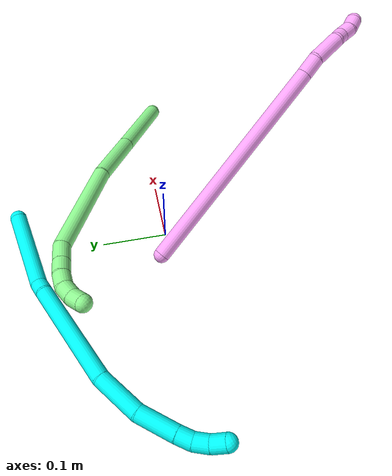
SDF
<sdf version="1.7">
 <world name="default">
  <model name="photoneo_s_sensor">
   <static>1</static>
   <pose>0 0 2 1.57079 1.57079 3.14159</pose>
   <link name="link">
    <inertial><mass>0.1</mass></inertial>
    <sensor name="sensor" type="depth">
     <update_rate>30</update_rate>
     <camera>
      <horizontal_fov>1.22</horizontal_fov>
      <image><width>1920</width><height>1200</height><format>B8G8R8</format></image>
      <clip><near>0.1</near><far>4</far></clip>
      <depth_camera><output>points</output></depth_camera>
     </camera>
     <plugin name="camera_plugin" filename="libgazebo_ros_depth_camera.so">
      <baseline>0.2</baseline>
      <alwaysOn>1</alwaysOn>
      <updateRate>0.0</updateRate>
      <cameraName>camera_ir</cameraName>
      <imageTopicName>/camera/color/image_raw</imageTopicName>
      <cameraInfoTopicName>/camera/color/camera_info</cameraInfoTopicName>
      <depthImageTopicName>/camera/depth/image_raw</depthImageTopicName>
      <depthImageCameraInfoTopicName>/camera/depth/camera_info</depthImageCameraInfoTopicName>
      <pointCloudTopicName>/camera/depth/points</pointCloudTopicName>
      <frameName>fr_optical</frameName>
      <pointCloudCutoff>0.1</pointCloudCutoff>
      <pointCloudCutoffMax>2.0</pointCloudCutoffMax>
      <distortionK1>0</distortionK1>
      <distortionK2>0</distortionK2>
      <distortionK3>0</distortionK3>
      <distortionT1>0</distortionT1>
      <distortionT2>0</distortionT2>
      <CxPrime>0</CxPrime>
      <Cx>0</Cx>
      <Cy>0</Cy>
      <focalLength>0</focalLength>
      <hackBaseline>0</hackBaseline>
     </plugin>
    </sensor>
   </link>
  </model>
  <model name="bin">
   <static>1</static>
   <link name="bottom">
    <collision name="collision-bottom">
     <pose>0 0 -0.01 0 -0 0</pose>
     <geometry><box><size>0.8 0.6 0.02</size></box></geometry>
     <surface>
      <friction><ode><mu>100</mu><mu2>100</mu2></ode></friction>
      <contact><collide_bitmask>65535</collide_bitmask></contact>
     </surface>
    </collision>
   </link>
   <link name="west_wall">
    <collision name="collision-west_wall">
     <pose>-0.41 0 0.1 0 -0 0</pose>
     <geometry><box><size>0.02 0.6 0.2</size></box></geometry>
     <surface>
      <friction><ode><mu>100</mu><mu2>100</mu2></ode></friction>
      <contact><collide_bitmask>65535</collide_bitmask></contact>
     </surface>
    </collision>
   </link>
   <link name="east_wall">
    <collision name="collision-east_wall">
     <pose>0.41 0 0.1 0 -0 0</pose>
     <geometry><box><size>0.02 0.6 0.2</size></box></geometry>
     <surface>
      <friction><ode><mu>100</mu><mu2>100</mu2></ode></friction>
      <contact><collide_bitmask>65535</collide_bitmask></contact>
     </surface>
    </collision>
   </link>
   <link name="south_wall">
    <collision name="collision-south_wall">
     <pose>0 -0.31 0.1 0 -0 0</pose>
     <geometry><box><size>0.8 0.02 0.2</size></box></geometry>
     <surface>
      <friction><ode><mu>100</mu><mu2>100</mu2></ode></friction>
      <contact><collide_bitmask>65535</collide_bitmask></contact>
     </surface>
    </collision>
   </link>
   <link name="north_wall">
    <collision name="collision-north_wall">
     <pose>0 0.31 0.1 0 -0 0</pose>
     <geometry><box><size>0.8 0.02 0.2</size></box></geometry>
     <surface>
      <friction><ode><mu>100</mu><mu2>100</mu2></ode></friction>
      <contact><collide_bitmask>65535</collide_bitmask></contact>
     </surface>
    </collision>
   </link>
  </model>
  <model name="3">
   <static>0</static>
   <link name="3">
    <collision name="collision-cylinder-e_1_1_4">
     <pose>-0.061561 -0.001895 -0.003908 2.69007 -1.50036 -2.65832</pose>
     <geometry><cylinder><radius>0.0125</radius><length>0.123428</length></cylinder></geometry>
     <surface>
      <friction><ode><mu>1.16</mu><mu2>1.16</mu2><slip1>0</slip1><slip2>0</slip2></ode></friction>
      <contact><ode><kp>1e+06</kp><kd>1</kd><max_vel>0</max_vel><min_depth>0.001</min_depth></ode></contact>
     </surface>
    </collision>
    <visual name="visual-cylinder-e_1_1_4">
     <pose>-0.061561 -0.001895 -0.003908 2.69007 -1.50036 -2.65832</pose>
     <geometry><cylinder><radius>0.0125</radius><length>0.123428</length></cylinder></geometry>
     <material><ambient>0.003922 1 0.996078 1</ambient></material>
    </visual>
    <collision name="collision-cylinder-e_2_4_5">
     <pose>-0.132891 -0.001556 -0.005305 -0.72733 -1.23947 0.530321</pose>
     <geometry><cylinder><radius>0.0125</radius><length>0.020663</length></cylinder></geometry>
     <surface>
      <friction><ode><mu>1.16</mu><mu2>1.16</mu2><slip1>0</slip1><slip2>0</slip2></ode></friction>
      <contact><ode><kp>1e+06</kp><kd>1</kd><max_vel>0</max_vel><min_depth>0.001</min_depth></ode></contact>
     </surface>
    </collision>
    <visual name="visual-cylinder-e_2_4_5">
     <pose>-0.132891 -0.001556 -0.005305 -0.72733 -1.23947 0.530321</pose>
     <geometry><cylinder><radius>0.0125</radius><length>0.020663</length></cylinder></geometry>
     <material><ambient>0.003922 1 0.996078 1</ambient></material>
    </visual>
    <collision name="collision-cylinder-e_3_5_6">
     <pose>-0.222796 0.000569 0.013103 0.006918 -1.37494 -0.005681</pose>
     <geometry><cylinder><radius>0.0125</radius><length>0.163395</length></cylinder></geometry>
     <surface>
      <friction><ode><mu>1.16</mu><mu2>1.16</mu2><slip1>0</slip1><slip2>0</slip2></ode></friction>
      <contact><ode><kp>1e+06</kp><kd>1</kd><max_vel>0</max_vel><min_depth>0.001</min_depth></ode></contact>
     </surface>
    </collision>
    <visual name="visual-cylinder-e_3_5_6">
     <pose>-0.222796 0.000569 0.013103 0.006918 -1.37494 -0.005681</pose>
     <geometry><cylinder><radius>0.0125</radius><length>0.163395</length></cylinder></geometry>
     <material><ambient>0.003922 1 0.996078 1</ambient></material>
    </visual>
    <collision name="collision-cylinder-e_4_6_7">
     <pose>-0.33422 -0.003633 0.04159 0.314292 -1.17056 -0.20926</pose>
     <geometry><cylinder><radius>0.0125</radius><length>0.067946</length></cylinder></geometry>
     <surface>
      <friction><ode><mu>1.16</mu><mu2>1.16</mu2><slip1>0</slip1><slip2>0</slip2></ode></friction>
      <contact><ode><kp>1e+06</kp><kd>1</kd><max_vel>0</max_vel><min_depth>0.001</min_depth></ode></contact>
     </surface>
    </collision>
    <visual name="visual-cylinder-e_4_6_7">
     <pose>-0.33422 -0.003633 0.04159 0.314292 -1.17056 -0.20926</pose>
     <geometry><cylinder><radius>0.0125</radius><length>0.067946</length></cylinder></geometry>
     <material><ambient>0.003922 1 0.996078 1</ambient></material>
    </visual>
    <collision name="collision-cylinder-e_5_7_8">
     <pose>-0.388181 -0.013532 0.070157 0.348549 -0.927423 -0.175636</pose>
     <geometry><cylinder><radius>0.0125</radius><length>0.056679</length></cylinder></geometry>
     <surface>
      <friction><ode><mu>1.16</mu><mu2>1.16</mu2><slip1>0</slip1><slip2>0</slip2></ode></friction>
      <contact><ode><kp>1e+06</kp><kd>1</kd><max_vel>0</max_vel><min_depth>0.001</min_depth></ode></contact>
     </surface>
    </collision>
    <visual name="visual-cylinder-e_5_7_8">
     <pose>-0.388181 -0.013532 0.070157 0.348549 -0.927423 -0.175636</pose>
     <geometry><cylinder><radius>0.0125</radius><length>0.056679</length></cylinder></geometry>
     <material><ambient>0.003922 1 0.996078 1</ambient></material>
    </visual>
    <collision name="collision-cylinder-e_6_8_9">
     <pose>-0.419266 -0.021986 0.092885 0.373906 -0.859388 -0.172935</pose>
     <geometry><cylinder><radius>0.0125</radius><length>0.022209</length></cylinder></geometry>
     <surface>
      <friction><ode><mu>1.16</mu><mu2>1.16</mu2><slip1>0</slip1><slip2>0</slip2></ode></friction>
      <contact><ode><kp>1e+06</kp><kd>1</kd><max_vel>0</max_vel><min_depth>0.001</min_depth></ode></contact>
     </surface>
    </collision>
    <visual name="visual-cylinder-e_6_8_9">
     <pose>-0.419266 -0.021986 0.092885 0.373906 -0.859388 -0.172935</pose>
     <geometry><cylinder><radius>0.0125</radius><length>0.022209</length></cylinder></geometry>
     <material><ambient>0.003922 1 0.996078 1</ambient></material>
    </visual>
    <collision name="collision-cylinder-e_7_9_10">
     <pose>-0.434294 -0.0259 0.108836 0.136702 -0.618984 -0.043774</pose>
     <geometry><cylinder><radius>0.0125</radius><length>0.022808</length></cylinder></geometry>
     <surface>
      <friction><ode><mu>1.16</mu><mu2>1.16</mu2><slip1>0</slip1><slip2>0</slip2></ode></friction>
      <contact><ode><kp>1e+06</kp><kd>1</kd><max_vel>0</max_vel><min_depth>0.001</min_depth></ode></contact>
     </surface>
    </collision>
    <visual name="visual-cylinder-e_7_9_10">
     <pose>-0.434294 -0.0259 0.108836 0.136702 -0.618984 -0.043774</pose>
     <geometry><cylinder><radius>0.0125</radius><length>0.022808</length></cylinder></geometry>
     <material><ambient>0.003922 1 0.996078 1</ambient></material>
    </visual>
    <collision name="collision-cylinder-e_8_10_2">
     <pose>-0.445518 -0.0264 0.128476 -0.073243 -0.414646 0.015413</pose>
     <geometry><cylinder><radius>0.0125</radius><length>0.022873</length></cylinder></geometry>
     <surface>
      <friction><ode><mu>1.16</mu><mu2>1.16</mu2><slip1>0</slip1><slip2>0</slip2></ode></friction>
      <contact><ode><kp>1e+06</kp><kd>1</kd><max_vel>0</max_vel><min_depth>0.001</min_depth></ode></contact>
     </surface>
    </collision>
    <visual name="visual-cylinder-e_8_10_2">
     <pose>-0.445518 -0.0264 0.128476 -0.073243 -0.414646 0.015413</pose>
     <geometry><cylinder><radius>0.0125</radius><length>0.022873</length></cylinder></geometry>
     <material><ambient>0.003922 1 0.996078 1</ambient></material>
    </visual>
    <collision name="collision-sphere-2">
     <pose>-0.450125 -0.025634 0.138916 0 -0 0</pose>
     <geometry><sphere><radius>0.0125</radius></sphere></geometry>
     <surface>
      <friction><ode><mu>1.16</mu><mu2>1.16</mu2><slip1>0</slip1><slip2>0</slip2></ode></friction>
      <contact><ode><kp>1e+06</kp><kd>1</kd><max_vel>0</max_vel><min_depth>0.001</min_depth></ode></contact>
     </surface>
    </collision>
    <visual name="visual-sphere-2">
     <pose>-0.450125 -0.025634 0.138916 0 -0 0</pose>
     <geometry><sphere><radius>0.0125</radius></sphere></geometry>
     <material><ambient>0.003922 1 0.996078 1</ambient></material>
    </visual>
    <collision name="collision-sphere-10">
     <pose>-0.440911 -0.027166 0.118037 0 -0 0</pose>
     <geometry><sphere><radius>0.0125</radius></sphere></geometry>
     <surface>
      <friction><ode><mu>1.16</mu><mu2>1.16</mu2><slip1>0</slip1><slip2>0</slip2></ode></friction>
      <contact><ode><kp>1e+06</kp><kd>1</kd><max_vel>0</max_vel><min_depth>0.001</min_depth></ode></contact>
     </surface>
    </collision>
    <visual name="visual-sphere-10">
     <pose>-0.440911 -0.027166 0.118037 0 -0 0</pose>
     <geometry><sphere><radius>0.0125</radius></sphere></geometry>
     <material><ambient>0.003922 1 0.996078 1</ambient></material>
    </visual>
    <collision name="collision-sphere-9">
     <pose>-0.427678 -0.024634 0.099634 0 -0 0</pose>
     <geometry><sphere><radius>0.0125</radius></sphere></geometry>
     <surface>
      <friction><ode><mu>1.16</mu><mu2>1.16</mu2><slip1>0</slip1><slip2>0</slip2></ode></friction>
      <contact><ode><kp>1e+06</kp><kd>1</kd><max_vel>0</max_vel><min_depth>0.001</min_depth></ode></contact>
     </surface>
    </collision>
    <visual name="visual-sphere-9">
     <pose>-0.427678 -0.024634 0.099634 0 -0 0</pose>
     <geometry><sphere><radius>0.0125</radius></sphere></geometry>
     <material><ambient>0.003922 1 0.996078 1</ambient></material>
    </visual>
    <collision name="collision-sphere-4">
     <pose>-0.123122 -0.00379 -0.007816 0 -0 0</pose>
     <geometry><sphere><radius>0.0125</radius></sphere></geometry>
     <surface>
      <friction><ode><mu>1.16</mu><mu2>1.16</mu2><slip1>0</slip1><slip2>0</slip2></ode></friction>
      <contact><ode><kp>1e+06</kp><kd>1</kd><max_vel>0</max_vel><min_depth>0.001</min_depth></ode></contact>
     </surface>
    </collision>
    <visual name="visual-sphere-4">
     <pose>-0.123122 -0.00379 -0.007816 0 -0 0</pose>
     <geometry><sphere><radius>0.0125</radius></sphere></geometry>
     <material><ambient>0.003922 1 0.996078 1</ambient></material>
    </visual>
    <collision name="collision-sphere-1">
     <geometry><sphere><radius>0.0125</radius></sphere></geometry>
     <surface>
      <friction><ode><mu>1.16</mu><mu2>1.16</mu2><slip1>0</slip1><slip2>0</slip2></ode></friction>
      <contact><ode><kp>1e+06</kp><kd>1</kd><max_vel>0</max_vel><min_depth>0.001</min_depth></ode></contact>
     </surface>
    </collision>
    <visual name="visual-sphere-1">
     <geometry><sphere><radius>0.0125</radius></sphere></geometry>
     <material><ambient>0.003922 1 0.996078 1</ambient></material>
    </visual>
    <collision name="collision-sphere-8">
     <pose>-0.410855 -0.019338 0.086136 0 -0 0</pose>
     <geometry><sphere><radius>0.0125</radius></sphere></geometry>
     <surface>
      <friction><ode><mu>1.16</mu><mu2>1.16</mu2><slip1>0</slip1><slip2>0</slip2></ode></friction>
      <contact><ode><kp>1e+06</kp><kd>1</kd><max_vel>0</max_vel><min_depth>0.001</min_depth></ode></contact>
     </surface>
    </collision>
    <visual name="visual-sphere-8">
     <pose>-0.410855 -0.019338 0.086136 0 -0 0</pose>
     <geometry><sphere><radius>0.0125</radius></sphere></geometry>
     <material><ambient>0.003922 1 0.996078 1</ambient></material>
    </visual>
    <collision name="collision-sphere-5">
     <pose>-0.142661 0.000679 -0.002795 0 -0 0</pose>
     <geometry><sphere><radius>0.0125</radius></sphere></geometry>
     <surface>
      <friction><ode><mu>1.16</mu><mu2>1.16</mu2><slip1>0</slip1><slip2>0</slip2></ode></friction>
      <contact><ode><kp>1e+06</kp><kd>1</kd><max_vel>0</max_vel><min_depth>0.001</min_depth></ode></contact>
     </surface>
    </collision>
    <visual name="visual-sphere-5">
     <pose>-0.142661 0.000679 -0.002795 0 -0 0</pose>
     <geometry><sphere><radius>0.0125</radius></sphere></geometry>
     <material><ambient>0.003922 1 0.996078 1</ambient></material>
    </visual>
    <collision name="collision-sphere-6">
     <pose>-0.302932 0.000459 0.029001 0 -0 0</pose>
     <geometry><sphere><radius>0.0125</radius></sphere></geometry>
     <surface>
      <friction><ode><mu>1.16</mu><mu2>1.16</mu2><slip1>0</slip1><slip2>0</slip2></ode></friction>
      <contact><ode><kp>1e+06</kp><kd>1</kd><max_vel>0</max_vel><min_depth>0.001</min_depth></ode></contact>
     </surface>
    </collision>
    <visual name="visual-sphere-6">
     <pose>-0.302932 0.000459 0.029001 0 -0 0</pose>
     <geometry><sphere><radius>0.0125</radius></sphere></geometry>
     <material><ambient>0.003922 1 0.996078 1</ambient></material>
    </visual>
    <collision name="collision-sphere-7">
     <pose>-0.365508 -0.007725 0.054179 0 -0 0</pose>
     <geometry><sphere><radius>0.0125</radius></sphere></geometry>
     <surface>
      <friction><ode><mu>1.16</mu><mu2>1.16</mu2><slip1>0</slip1><slip2>0</slip2></ode></friction>
      <contact><ode><kp>1e+06</kp><kd>1</kd><max_vel>0</max_vel><min_depth>0.001</min_depth></ode></contact>
     </surface>
    </collision>
    <visual name="visual-sphere-7">
     <pose>-0.365508 -0.007725 0.054179 0 -0 0</pose>
     <geometry><sphere><radius>0.0125</radius></sphere></geometry>
     <material><ambient>0.003922 1 0.996078 1</ambient></material>
    </visual>
    <inertial>
     <pose>-0.241731 -0.00574 0.03167 0 -0 0</pose>
     <mass>0.5</mass>
     <inertia>
      <ixx>4.3e-05</ixx>
      <ixy>0</ixy>
      <ixz>0</ixz>
      <iyy>0.000572</iyy>
      <iyz>0</iyz>
      <izz>0.000593</izz>
     </inertia>
    </inertial>
   </link>
   <pose>0.057044 0.226578 0.028477 1.15866 -0.079304 0.248028</pose>
  </model>
  <model name="4">
   <static>0</static>
   <link name="4">
    <collision name="collision-cylinder-e_1_1_4">
     <pose>0.005714 -0.002583 0.178474 0.014473 0.032002 0.000232</pose>
     <geometry><cylinder><radius>0.0125</radius><length>0.357169</length></cylinder></geometry>
     <surface>
      <friction><ode><mu>1.16</mu><mu2>1.16</mu2><slip1>0</slip1><slip2>0</slip2></ode></friction>
      <contact><ode><kp>1e+06</kp><kd>1</kd><max_vel>0</max_vel><min_depth>0.001</min_depth></ode></contact>
     </surface>
    </collision>
    <visual name="visual-cylinder-e_1_1_4">
     <pose>0.005714 -0.002583 0.178474 0.014473 0.032002 0.000232</pose>
     <geometry><cylinder><radius>0.0125</radius><length>0.357169</length></cylinder></geometry>
     <material><ambient>1 0.65098 0.996078 1</ambient></material>
    </visual>
    <collision name="collision-cylinder-e_2_4_5">
     <pose>0.01227 -0.005323 0.372412 0.01013 0.054391 0.000276</pose>
     <geometry><cylinder><radius>0.0125</radius><length>0.030975</length></cylinder></geometry>
     <surface>
      <friction><ode><mu>1.16</mu><mu2>1.16</mu2><slip1>0</slip1><slip2>0</slip2></ode></friction>
      <contact><ode><kp>1e+06</kp><kd>1</kd><max_vel>0</max_vel><min_depth>0.001</min_depth></ode></contact>
     </surface>
    </collision>
    <visual name="visual-cylinder-e_2_4_5">
     <pose>0.01227 -0.005323 0.372412 0.01013 0.054391 0.000276</pose>
     <geometry><cylinder><radius>0.0125</radius><length>0.030975</length></cylinder></geometry>
     <material><ambient>1 0.65098 0.996078 1</ambient></material>
    </visual>
    <collision name="collision-cylinder-e_3_5_6">
     <pose>0.009848 -0.011404 0.412341 0.237564 -0.128969 -0.015413</pose>
     <geometry><cylinder><radius>0.0125</radius><length>0.050766</length></cylinder></geometry>
     <surface>
      <friction><ode><mu>1.16</mu><mu2>1.16</mu2><slip1>0</slip1><slip2>0</slip2></ode></friction>
      <contact><ode><kp>1e+06</kp><kd>1</kd><max_vel>0</max_vel><min_depth>0.001</min_depth></ode></contact>
     </surface>
    </collision>
    <visual name="visual-cylinder-e_3_5_6">
     <pose>0.009848 -0.011404 0.412341 0.237564 -0.128969 -0.015413</pose>
     <geometry><cylinder><radius>0.0125</radius><length>0.050766</length></cylinder></geometry>
     <material><ambient>1 0.65098 0.996078 1</ambient></material>
    </visual>
    <collision name="collision-cylinder-e_4_6_7">
     <pose>0.00515 -0.023438 0.44468 0.659937 -0.142764 -0.048969</pose>
     <geometry><cylinder><radius>0.0125</radius><length>0.02014</length></cylinder></geometry>
     <surface>
      <friction><ode><mu>1.16</mu><mu2>1.16</mu2><slip1>0</slip1><slip2>0</slip2></ode></friction>
      <contact><ode><kp>1e+06</kp><kd>1</kd><max_vel>0</max_vel><min_depth>0.001</min_depth></ode></contact>
     </surface>
    </collision>
    <visual name="visual-cylinder-e_4_6_7">
     <pose>0.00515 -0.023438 0.44468 0.659937 -0.142764 -0.048969</pose>
     <geometry><cylinder><radius>0.0125</radius><length>0.02014</length></cylinder></geometry>
     <material><ambient>1 0.65098 0.996078 1</ambient></material>
    </visual>
    <collision name="collision-cylinder-e_5_7_8">
     <pose>0.001524 -0.03225 0.462243 0.271867 -0.214726 -0.029481</pose>
     <geometry><cylinder><radius>0.0125</radius><length>0.020589</length></cylinder></geometry>
     <surface>
      <friction><ode><mu>1.16</mu><mu2>1.16</mu2><slip1>0</slip1><slip2>0</slip2></ode></friction>
      <contact><ode><kp>1e+06</kp><kd>1</kd><max_vel>0</max_vel><min_depth>0.001</min_depth></ode></contact>
     </surface>
    </collision>
    <visual name="visual-cylinder-e_5_7_8">
     <pose>0.001524 -0.03225 0.462243 0.271867 -0.214726 -0.029481</pose>
     <geometry><cylinder><radius>0.0125</radius><length>0.020589</length></cylinder></geometry>
     <material><ambient>1 0.65098 0.996078 1</ambient></material>
    </visual>
    <collision name="collision-cylinder-e_6_8_2">
     <pose>0.000359 -0.039313 0.481074 0.445199 0.101191 0.022923</pose>
     <geometry><cylinder><radius>0.0125</radius><length>0.020363</length></cylinder></geometry>
     <surface>
      <friction><ode><mu>1.16</mu><mu2>1.16</mu2><slip1>0</slip1><slip2>0</slip2></ode></friction>
      <contact><ode><kp>1e+06</kp><kd>1</kd><max_vel>0</max_vel><min_depth>0.001</min_depth></ode></contact>
     </surface>
    </collision>
    <visual name="visual-cylinder-e_6_8_2">
     <pose>0.000359 -0.039313 0.481074 0.445199 0.101191 0.022923</pose>
     <geometry><cylinder><radius>0.0125</radius><length>0.020363</length></cylinder></geometry>
     <material><ambient>1 0.65098 0.996078 1</ambient></material>
    </visual>
    <collision name="collision-sphere-2">
     <pose>0.001387 -0.043675 0.490216 0 -0 0</pose>
     <geometry><sphere><radius>0.0125</radius></sphere></geometry>
     <surface>
      <friction><ode><mu>1.16</mu><mu2>1.16</mu2><slip1>0</slip1><slip2>0</slip2></ode></friction>
      <contact><ode><kp>1e+06</kp><kd>1</kd><max_vel>0</max_vel><min_depth>0.001</min_depth></ode></contact>
     </surface>
    </collision>
    <visual name="visual-sphere-2">
     <pose>0.001387 -0.043675 0.490216 0 -0 0</pose>
     <geometry><sphere><radius>0.0125</radius></sphere></geometry>
     <material><ambient>1 0.65098 0.996078 1</ambient></material>
    </visual>
    <collision name="collision-sphere-4">
     <pose>0.011428 -0.005167 0.356949 0 -0 0</pose>
     <geometry><sphere><radius>0.0125</radius></sphere></geometry>
     <surface>
      <friction><ode><mu>1.16</mu><mu2>1.16</mu2><slip1>0</slip1><slip2>0</slip2></ode></friction>
      <contact><ode><kp>1e+06</kp><kd>1</kd><max_vel>0</max_vel><min_depth>0.001</min_depth></ode></contact>
     </surface>
    </collision>
    <visual name="visual-sphere-4">
     <pose>0.011428 -0.005167 0.356949 0 -0 0</pose>
     <geometry><sphere><radius>0.0125</radius></sphere></geometry>
     <material><ambient>1 0.65098 0.996078 1</ambient></material>
    </visual>
    <collision name="collision-sphere-1">
     <geometry><sphere><radius>0.0125</radius></sphere></geometry>
     <surface>
      <friction><ode><mu>1.16</mu><mu2>1.16</mu2><slip1>0</slip1><slip2>0</slip2></ode></friction>
      <contact><ode><kp>1e+06</kp><kd>1</kd><max_vel>0</max_vel><min_depth>0.001</min_depth></ode></contact>
     </surface>
    </collision>
    <visual name="visual-sphere-1">
     <geometry><sphere><radius>0.0125</radius></sphere></geometry>
     <material><ambient>1 0.65098 0.996078 1</ambient></material>
    </visual>
    <collision name="collision-sphere-8">
     <pose>-0.00067 -0.034951 0.471932 0 -0 0</pose>
     <geometry><sphere><radius>0.0125</radius></sphere></geometry>
     <surface>
      <friction><ode><mu>1.16</mu><mu2>1.16</mu2><slip1>0</slip1><slip2>0</slip2></ode></friction>
      <contact><ode><kp>1e+06</kp><kd>1</kd><max_vel>0</max_vel><min_depth>0.001</min_depth></ode></contact>
     </surface>
    </collision>
    <visual name="visual-sphere-8">
     <pose>-0.00067 -0.034951 0.471932 0 -0 0</pose>
     <geometry><sphere><radius>0.0125</radius></sphere></geometry>
     <material><ambient>1 0.65098 0.996078 1</ambient></material>
    </visual>
    <collision name="collision-sphere-5">
     <pose>0.013112 -0.00548 0.387876 0 -0 0</pose>
     <geometry><sphere><radius>0.0125</radius></sphere></geometry>
     <surface>
      <friction><ode><mu>1.16</mu><mu2>1.16</mu2><slip1>0</slip1><slip2>0</slip2></ode></friction>
      <contact><ode><kp>1e+06</kp><kd>1</kd><max_vel>0</max_vel><min_depth>0.001</min_depth></ode></contact>
     </surface>
    </collision>
    <visual name="visual-sphere-5">
     <pose>0.013112 -0.00548 0.387876 0 -0 0</pose>
     <geometry><sphere><radius>0.0125</radius></sphere></geometry>
     <material><ambient>1 0.65098 0.996078 1</ambient></material>
    </visual>
    <collision name="collision-sphere-6">
     <pose>0.006583 -0.017328 0.436806 0 -0 0</pose>
     <geometry><sphere><radius>0.0125</radius></sphere></geometry>
     <surface>
      <friction><ode><mu>1.16</mu><mu2>1.16</mu2><slip1>0</slip1><slip2>0</slip2></ode></friction>
      <contact><ode><kp>1e+06</kp><kd>1</kd><max_vel>0</max_vel><min_depth>0.001</min_depth></ode></contact>
     </surface>
    </collision>
    <visual name="visual-sphere-6">
     <pose>0.006583 -0.017328 0.436806 0 -0 0</pose>
     <geometry><sphere><radius>0.0125</radius></sphere></geometry>
     <material><ambient>1 0.65098 0.996078 1</ambient></material>
    </visual>
    <collision name="collision-sphere-7">
     <pose>0.003718 -0.029549 0.452555 0 -0 0</pose>
     <geometry><sphere><radius>0.0125</radius></sphere></geometry>
     <surface>
      <friction><ode><mu>1.16</mu><mu2>1.16</mu2><slip1>0</slip1><slip2>0</slip2></ode></friction>
      <contact><ode><kp>1e+06</kp><kd>1</kd><max_vel>0</max_vel><min_depth>0.001</min_depth></ode></contact>
     </surface>
    </collision>
    <visual name="visual-sphere-7">
     <pose>0.003718 -0.029549 0.452555 0 -0 0</pose>
     <geometry><sphere><radius>0.0125</radius></sphere></geometry>
     <material><ambient>1 0.65098 0.996078 1</ambient></material>
    </visual>
    <inertial>
     <pose>0.006127 -0.007206 0.248964 0 -0 0</pose>
     <mass>0.5</mass>
     <inertia>
      <ixx>0.003831</ixx>
      <ixy>0</ixy>
      <ixz>0</ixz>
      <iyy>0.003828</iyy>
      <iyz>0</iyz>
      <izz>-2.2e-05</izz>
     </inertia>
    </inertial>
   </link>
   <pose>-0.052912 0.014142 0.020959 0.996401 -0.53639 0.870911</pose>
  </model>
  <model name="13">
   <static>0</static>
   <link name="13">
    <collision name="collision-cylinder-e_1_1_4">
     <pose>-0.009307 -0.003536 0.067141 0.052612 -0.137551 -0.003625</pose>
     <geometry><cylinder><radius>0.0125</radius><length>0.13575</length></cylinder></geometry>
     <surface>
      <friction><ode><mu>1.16</mu><mu2>1.16</mu2><slip1>0</slip1><slip2>0</slip2></ode></friction>
      <contact><ode><kp>1e+06</kp><kd>1</kd><max_vel>0</max_vel><min_depth>0.001</min_depth></ode></contact>
     </surface>
    </collision>
    <visual name="visual-cylinder-e_1_1_4">
     <pose>-0.009307 -0.003536 0.067141 0.052612 -0.137551 -0.003625</pose>
     <geometry><cylinder><radius>0.0125</radius><length>0.13575</length></cylinder></geometry>
     <material><ambient>0.564706 0.984314 0.572549 1</ambient></material>
    </visual>
    <collision name="collision-cylinder-e_2_4_5">
     <pose>-0.026401 -0.009177 0.182593 0.043551 -0.159655 -0.003485</pose>
     <geometry><cylinder><radius>0.0125</radius><length>0.097961</length></cylinder></geometry>
     <surface>
      <friction><ode><mu>1.16</mu><mu2>1.16</mu2><slip1>0</slip1><slip2>0</slip2></ode></friction>
      <contact><ode><kp>1e+06</kp><kd>1</kd><max_vel>0</max_vel><min_depth>0.001</min_depth></ode></contact>
     </surface>
    </collision>
    <visual name="visual-cylinder-e_2_4_5">
     <pose>-0.026401 -0.009177 0.182593 0.043551 -0.159655 -0.003485</pose>
     <geometry><cylinder><radius>0.0125</radius><length>0.097961</length></cylinder></geometry>
     <material><ambient>0.564706 0.984314 0.572549 1</ambient></material>
    </visual>
    <collision name="collision-cylinder-e_3_5_6">
     <pose>-0.057893 -0.021659 0.302352 0.144228 -0.317259 -0.023112</pose>
     <geometry><cylinder><radius>0.0125</radius><length>0.151978</length></cylinder></geometry>
     <surface>
      <friction><ode><mu>1.16</mu><mu2>1.16</mu2><slip1>0</slip1><slip2>0</slip2></ode></friction>
      <contact><ode><kp>1e+06</kp><kd>1</kd><max_vel>0</max_vel><min_depth>0.001</min_depth></ode></contact>
     </surface>
    </collision>
    <visual name="visual-cylinder-e_3_5_6">
     <pose>-0.057893 -0.021659 0.302352 0.144228 -0.317259 -0.023112</pose>
     <geometry><cylinder><radius>0.0125</radius><length>0.151978</length></cylinder></geometry>
     <material><ambient>0.564706 0.984314 0.572549 1</ambient></material>
    </visual>
    <collision name="collision-cylinder-e_4_6_7">
     <pose>-0.083077 -0.039192 0.386848 0.501658 -0.099022 -0.025391</pose>
     <geometry><cylinder><radius>0.0125</radius><length>0.029912</length></cylinder></geometry>
     <surface>
      <friction><ode><mu>1.16</mu><mu2>1.16</mu2><slip1>0</slip1><slip2>0</slip2></ode></friction>
      <contact><ode><kp>1e+06</kp><kd>1</kd><max_vel>0</max_vel><min_depth>0.001</min_depth></ode></contact>
     </surface>
    </collision>
    <visual name="visual-cylinder-e_4_6_7">
     <pose>-0.083077 -0.039192 0.386848 0.501658 -0.099022 -0.025391</pose>
     <geometry><cylinder><radius>0.0125</radius><length>0.029912</length></cylinder></geometry>
     <material><ambient>0.564706 0.984314 0.572549 1</ambient></material>
    </visual>
    <collision name="collision-cylinder-e_5_7_8">
     <pose>-0.085642 -0.051717 0.409375 0.515373 -0.099369 -0.026208</pose>
     <geometry><cylinder><radius>0.0125</radius><length>0.021892</length></cylinder></geometry>
     <surface>
      <friction><ode><mu>1.16</mu><mu2>1.16</mu2><slip1>0</slip1><slip2>0</slip2></ode></friction>
      <contact><ode><kp>1e+06</kp><kd>1</kd><max_vel>0</max_vel><min_depth>0.001</min_depth></ode></contact>
     </surface>
    </collision>
    <visual name="visual-cylinder-e_5_7_8">
     <pose>-0.085642 -0.051717 0.409375 0.515373 -0.099369 -0.026208</pose>
     <geometry><cylinder><radius>0.0125</radius><length>0.021892</length></cylinder></geometry>
     <material><ambient>0.564706 0.984314 0.572549 1</ambient></material>
    </visual>
    <collision name="collision-cylinder-e_6_8_9">
     <pose>-0.088042 -0.06372 0.426706 0.701416 -0.127115 -0.046557</pose>
     <geometry><cylinder><radius>0.0125</radius><length>0.020731</length></cylinder></geometry>
     <surface>
      <friction><ode><mu>1.16</mu><mu2>1.16</mu2><slip1>0</slip1><slip2>0</slip2></ode></friction>
      <contact><ode><kp>1e+06</kp><kd>1</kd><max_vel>0</max_vel><min_depth>0.001</min_depth></ode></contact>
     </surface>
    </collision>
    <visual name="visual-cylinder-e_6_8_9">
     <pose>-0.088042 -0.06372 0.426706 0.701416 -0.127115 -0.046557</pose>
     <geometry><cylinder><radius>0.0125</radius><length>0.020731</length></cylinder></geometry>
     <material><ambient>0.564706 0.984314 0.572549 1</ambient></material>
    </visual>
    <collision name="collision-cylinder-e_7_9_10">
     <pose>-0.088244 -0.07916 0.440086 1.01042 0.106539 0.058964</pose>
     <geometry><cylinder><radius>0.0125</radius><length>0.020908</length></cylinder></geometry>
     <surface>
      <friction><ode><mu>1.16</mu><mu2>1.16</mu2><slip1>0</slip1><slip2>0</slip2></ode></friction>
      <contact><ode><kp>1e+06</kp><kd>1</kd><max_vel>0</max_vel><min_depth>0.001</min_depth></ode></contact>
     </surface>
    </collision>
    <visual name="visual-cylinder-e_7_9_10">
     <pose>-0.088244 -0.07916 0.440086 1.01042 0.106539 0.058964</pose>
     <geometry><cylinder><radius>0.0125</radius><length>0.020908</length></cylinder></geometry>
     <material><ambient>0.564706 0.984314 0.572549 1</ambient></material>
    </visual>
    <collision name="collision-cylinder-e_8_10_2">
     <pose>-0.083203 -0.096464 0.450215 1.07426 0.386145 0.231821</pose>
     <geometry><cylinder><radius>0.0125</radius><length>0.020868</length></cylinder></geometry>
     <surface>
      <friction><ode><mu>1.16</mu><mu2>1.16</mu2><slip1>0</slip1><slip2>0</slip2></ode></friction>
      <contact><ode><kp>1e+06</kp><kd>1</kd><max_vel>0</max_vel><min_depth>0.001</min_depth></ode></contact>
     </surface>
    </collision>
    <visual name="visual-cylinder-e_8_10_2">
     <pose>-0.083203 -0.096464 0.450215 1.07426 0.386145 0.231821</pose>
     <geometry><cylinder><radius>0.0125</radius><length>0.020868</length></cylinder></geometry>
     <material><ambient>0.564706 0.984314 0.572549 1</ambient></material>
    </visual>
    <collision name="collision-sphere-2">
     <pose>-0.079273 -0.104962 0.45482 0 -0 0</pose>
     <geometry><sphere><radius>0.0125</radius></sphere></geometry>
     <surface>
      <friction><ode><mu>1.16</mu><mu2>1.16</mu2><slip1>0</slip1><slip2>0</slip2></ode></friction>
      <contact><ode><kp>1e+06</kp><kd>1</kd><max_vel>0</max_vel><min_depth>0.001</min_depth></ode></contact>
     </surface>
    </collision>
    <visual name="visual-sphere-2">
     <pose>-0.079273 -0.104962 0.45482 0 -0 0</pose>
     <geometry><sphere><radius>0.0125</radius></sphere></geometry>
     <material><ambient>0.564706 0.984314 0.572549 1</ambient></material>
    </visual>
    <collision name="collision-sphere-10">
     <pose>-0.087133 -0.087965 0.445611 0 -0 0</pose>
     <geometry><sphere><radius>0.0125</radius></sphere></geometry>
     <surface>
      <friction><ode><mu>1.16</mu><mu2>1.16</mu2><slip1>0</slip1><slip2>0</slip2></ode></friction>
      <contact><ode><kp>1e+06</kp><kd>1</kd><max_vel>0</max_vel><min_depth>0.001</min_depth></ode></contact>
     </surface>
    </collision>
    <visual name="visual-sphere-10">
     <pose>-0.087133 -0.087965 0.445611 0 -0 0</pose>
     <geometry><sphere><radius>0.0125</radius></sphere></geometry>
     <material><ambient>0.564706 0.984314 0.572549 1</ambient></material>
    </visual>
    <collision name="collision-sphere-9">
     <pose>-0.089356 -0.070355 0.434561 0 -0 0</pose>
     <geometry><sphere><radius>0.0125</radius></sphere></geometry>
     <surface>
      <friction><ode><mu>1.16</mu><mu2>1.16</mu2><slip1>0</slip1><slip2>0</slip2></ode></friction>
      <contact><ode><kp>1e+06</kp><kd>1</kd><max_vel>0</max_vel><min_depth>0.001</min_depth></ode></contact>
     </surface>
    </collision>
    <visual name="visual-sphere-9">
     <pose>-0.089356 -0.070355 0.434561 0 -0 0</pose>
     <geometry><sphere><radius>0.0125</radius></sphere></geometry>
     <material><ambient>0.564706 0.984314 0.572549 1</ambient></material>
    </visual>
    <collision name="collision-sphere-4">
     <pose>-0.018614 -0.007071 0.134282 0 -0 0</pose>
     <geometry><sphere><radius>0.0125</radius></sphere></geometry>
     <surface>
      <friction><ode><mu>1.16</mu><mu2>1.16</mu2><slip1>0</slip1><slip2>0</slip2></ode></friction>
      <contact><ode><kp>1e+06</kp><kd>1</kd><max_vel>0</max_vel><min_depth>0.001</min_depth></ode></contact>
     </surface>
    </collision>
    <visual name="visual-sphere-4">
     <pose>-0.018614 -0.007071 0.134282 0 -0 0</pose>
     <geometry><sphere><radius>0.0125</radius></sphere></geometry>
     <material><ambient>0.564706 0.984314 0.572549 1</ambient></material>
    </visual>
    <collision name="collision-sphere-1">
     <geometry><sphere><radius>0.0125</radius></sphere></geometry>
     <surface>
      <friction><ode><mu>1.16</mu><mu2>1.16</mu2><slip1>0</slip1><slip2>0</slip2></ode></friction>
      <contact><ode><kp>1e+06</kp><kd>1</kd><max_vel>0</max_vel><min_depth>0.001</min_depth></ode></contact>
     </surface>
    </collision>
    <visual name="visual-sphere-1">
     <geometry><sphere><radius>0.0125</radius></sphere></geometry>
     <material><ambient>0.564706 0.984314 0.572549 1</ambient></material>
    </visual>
    <collision name="collision-sphere-8">
     <pose>-0.086728 -0.057086 0.418852 0 -0 0</pose>
     <geometry><sphere><radius>0.0125</radius></sphere></geometry>
     <surface>
      <friction><ode><mu>1.16</mu><mu2>1.16</mu2><slip1>0</slip1><slip2>0</slip2></ode></friction>
      <contact><ode><kp>1e+06</kp><kd>1</kd><max_vel>0</max_vel><min_depth>0.001</min_depth></ode></contact>
     </surface>
    </collision>
    <visual name="visual-sphere-8">
     <pose>-0.086728 -0.057086 0.418852 0 -0 0</pose>
     <geometry><sphere><radius>0.0125</radius></sphere></geometry>
     <material><ambient>0.564706 0.984314 0.572549 1</ambient></material>
    </visual>
    <collision name="collision-sphere-5">
     <pose>-0.034187 -0.011282 0.230905 0 -0 0</pose>
     <geometry><sphere><radius>0.0125</radius></sphere></geometry>
     <surface>
      <friction><ode><mu>1.16</mu><mu2>1.16</mu2><slip1>0</slip1><slip2>0</slip2></ode></friction>
      <contact><ode><kp>1e+06</kp><kd>1</kd><max_vel>0</max_vel><min_depth>0.001</min_depth></ode></contact>
     </surface>
    </collision>
    <visual name="visual-sphere-5">
     <pose>-0.034187 -0.011282 0.230905 0 -0 0</pose>
     <geometry><sphere><radius>0.0125</radius></sphere></geometry>
     <material><ambient>0.564706 0.984314 0.572549 1</ambient></material>
    </visual>
    <collision name="collision-sphere-6">
     <pose>-0.081599 -0.032036 0.373799 0 -0 0</pose>
     <geometry><sphere><radius>0.0125</radius></sphere></geometry>
     <surface>
      <friction><ode><mu>1.16</mu><mu2>1.16</mu2><slip1>0</slip1><slip2>0</slip2></ode></friction>
      <contact><ode><kp>1e+06</kp><kd>1</kd><max_vel>0</max_vel><min_depth>0.001</min_depth></ode></contact>
     </surface>
    </collision>
    <visual name="visual-sphere-6">
     <pose>-0.081599 -0.032036 0.373799 0 -0 0</pose>
     <geometry><sphere><radius>0.0125</radius></sphere></geometry>
     <material><ambient>0.564706 0.984314 0.572549 1</ambient></material>
    </visual>
    <collision name="collision-sphere-7">
     <pose>-0.084556 -0.046349 0.399897 0 -0 0</pose>
     <geometry><sphere><radius>0.0125</radius></sphere></geometry>
     <surface>
      <friction><ode><mu>1.16</mu><mu2>1.16</mu2><slip1>0</slip1><slip2>0</slip2></ode></friction>
      <contact><ode><kp>1e+06</kp><kd>1</kd><max_vel>0</max_vel><min_depth>0.001</min_depth></ode></contact>
     </surface>
    </collision>
    <visual name="visual-sphere-7">
     <pose>-0.084556 -0.046349 0.399897 0 -0 0</pose>
     <geometry><sphere><radius>0.0125</radius></sphere></geometry>
     <material><ambient>0.564706 0.984314 0.572549 1</ambient></material>
    </visual>
    <inertial>
     <pose>-0.044829 -0.023928 0.241856 0 -0 0</pose>
     <mass>0.5</mass>
     <inertia>
      <ixx>0.000572</ixx>
      <ixy>0</ixy>
      <ixz>0</ixz>
      <iyy>0.000583</iyy>
      <iyz>0</iyz>
      <izz>0.000232</izz>
     </inertia>
    </inertial>
   </link>
   <pose>0.263599 -0.022957 0.032658 0.565717 -1.07228 -1.13401</pose>
  </model>
 </world>
</sdf>
